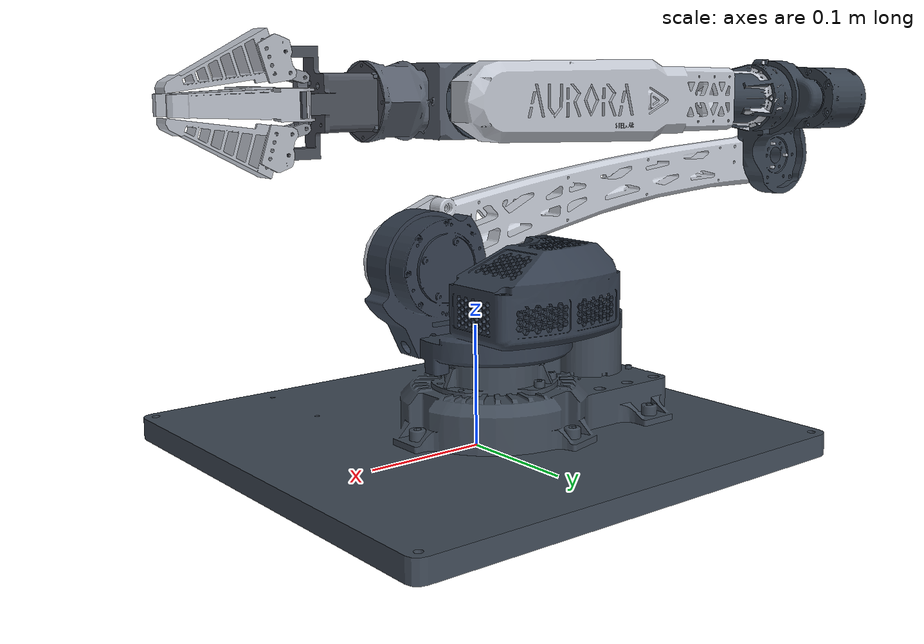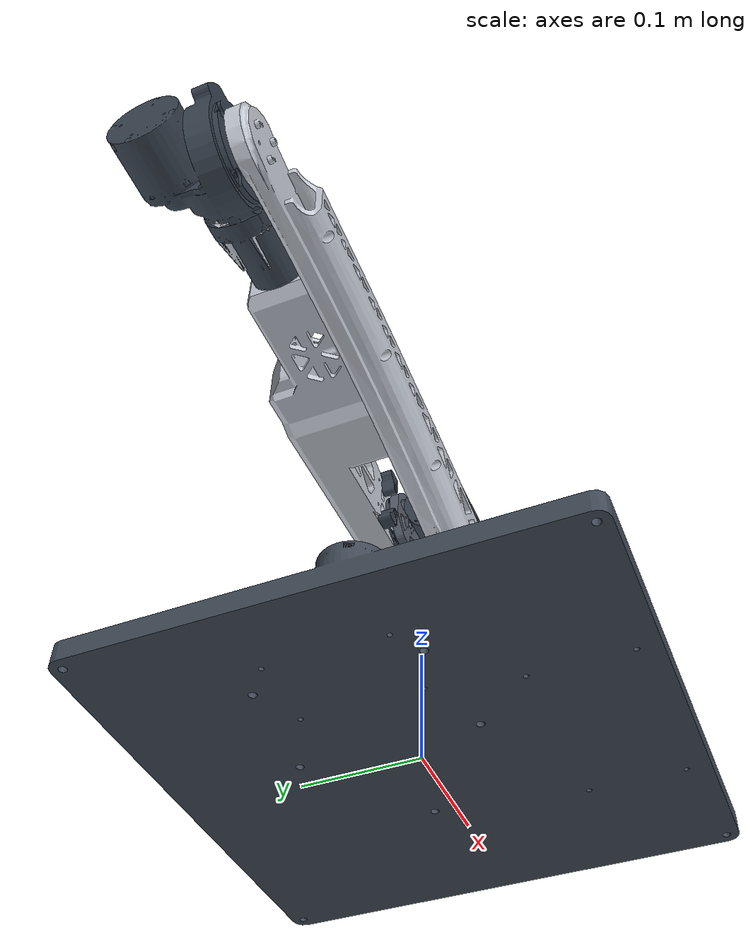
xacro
<?xml version="1.0"?>
<robot xmlns:xacro="http://www.ros.org/wiki/xacro" name="fruit_picking_arm">

  <xacro:arg name="initial_positions_file"
             default="$(find fruit_arm_moveit_config)/config/initial_positions.yaml"/>
  <xacro:arg name="hardware_plugin" default="mock_components/GenericSystem"/>
  <xacro:arg name="use_gazebo" default="false"/>
  <xacro:arg name="base_xyz" default="0 0 0"/>
  <xacro:arg name="base_rpy" default="0 0 0"/>
  <!-- Nominal frames exported from the mechanical "初始位置" assembly. -->
  <xacro:arg name="joint_1_rpy" default="0 0 1.5707963267949"/>
  <xacro:arg name="joint_2_rpy" default="0 0 0"/>
  <xacro:arg name="joint_3_xyz" default="-0.435124907351151 0 0.0653170345518886"/>
  <xacro:arg name="joint_3_rpy" default="0 0 0"/>
  <xacro:arg name="joint_4_rpy" default="0 0 0"/>
  <xacro:arg name="joint_5_xyz" default="0.35399 0.0195 0.0030892"/>
  <xacro:arg name="joint_5_rpy" default="0 0 0"/>
  <xacro:arg name="joint_6_rpy" default="0 0 0"/>
  <!-- Mechanical GRIPPER_MOUNT -> TCP measurement (metres). -->
  <xacro:arg name="tcp_xyz" default="0 0 0.124"/>
  <xacro:arg name="tcp_rpy" default="0 0 0"/>

  <link name="world"/>
  <link name="base_link"/>
  <joint name="world_to_base" type="fixed">
    <parent link="world"/>
    <child link="base_link"/>
    <origin xyz="$(arg base_xyz)" rpy="$(arg base_rpy)"/>
  </joint>

  <!-- Xacro imports -->
  <xacro:include filename="fruit_arm_macro.xacro" />
  <xacro:include filename="gripper.xacro" />
  <xacro:include filename="camera_mount.xacro" />

  <!-- CAD arm mounted under the public ROS base frame. -->
  <xacro:fruit_arm
      parent="base_link"
      hardware_plugin="$(arg hardware_plugin)"
      initial_positions_file="$(arg initial_positions_file)"
      joint_1_rpy="$(arg joint_1_rpy)"
      joint_2_rpy="$(arg joint_2_rpy)"
      joint_3_xyz="$(arg joint_3_xyz)"
      joint_3_rpy="$(arg joint_3_rpy)"
      joint_4_rpy="$(arg joint_4_rpy)"
      joint_5_xyz="$(arg joint_5_xyz)"
      joint_5_rpy="$(arg joint_5_rpy)"
      joint_6_rpy="$(arg joint_6_rpy)" />

  <!-- Gripper attached to the arm's tool flange -->
  <xacro:four_finger_cross_gripper
      parent="tool_flange"
      tcp_xyz="$(arg tcp_xyz)"
      tcp_rpy="$(arg tcp_rpy)" />

  <!-- Gazebo ros2_control plugin — bridges Gazebo physics to controller_manager -->
  <!-- CRITICAL: without this plugin, Gazebo loads the robot as a passive rigid body
       (no actuation, falls under gravity). Only active when use_gazebo:=true. -->
  <xacro:if value="$(arg use_gazebo)">
    <gazebo>
      <plugin filename="libgazebo_ros2_control.so" name="gazebo_ros2_control">
        <robot_param>robot_description</robot_param>
        <robot_param_node>robot_state_publisher</robot_param_node>
        <hold_joints>true</hold_joints>
        <parameters>$(find fruit_arm_moveit_config)/config/ros2_controllers.yaml</parameters>
      </plugin>
    </gazebo>
    <gazebo>
      <plugin filename="libfruit_grasp_attach_plugin.so"
              name="fruit_grasp_attach_plugin">
        <ros>
          <namespace>/simulation/fruit_gripper</namespace>
        </ros>
        <!-- Gazebo collapses the fixed gripper_base joint into arm_link_6. -->
        <parent_link>arm_link_6</parent_link>
        <child_link>apple_link</child_link>
        <model_prefix>fruit_</model_prefix>
        <!-- Mechanical TCP is 124mm beyond GRIPPER_MOUNT. -->
        <max_distance>0.20</max_distance>
      </plugin>
    </gazebo>
    <gazebo reference="gripper_finger_pos_x">
      <mu1>1.2</mu1>
      <mu2>1.2</mu2>
      <kp>100000</kp>
      <kd>10</kd>
      <maxVel>0.05</maxVel>
      <minDepth>0.001</minDepth>
    </gazebo>
    <gazebo reference="gripper_finger_neg_x">
      <mu1>1.2</mu1>
      <mu2>1.2</mu2>
      <kp>100000</kp>
      <kd>10</kd>
      <maxVel>0.05</maxVel>
      <minDepth>0.001</minDepth>
    </gazebo>
  </xacro:if>

</robot>

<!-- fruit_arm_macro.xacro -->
<robot xmlns:xacro="http://www.ros.org/wiki/xacro">

  <xacro:macro name="fruit_arm" params="parent hardware_plugin initial_positions_file joint_1_rpy joint_2_rpy joint_3_xyz joint_3_rpy joint_4_rpy joint_5_xyz joint_5_rpy joint_6_rpy">
    <xacro:include filename="$(find fruit_arm_moveit_config)/config/fruit_arm.ros2_control.xacro" />
    <xacro:fruit_arm_ros2_control
        hardware_plugin="${hardware_plugin}"
        initial_positions_file="${initial_positions_file}"/>

    <xacro:macro name="cad_link" params="name mesh scale mass com inertia color:='0.70 0.72 0.76 1'">
      <link name="${name}">
        <inertial>
          <origin xyz="${com}" rpy="0 0 0"/>
          <mass value="${mass}"/>
          <inertia ixx="${inertia[0]}" ixy="${inertia[1]}" ixz="${inertia[2]}"
                   iyy="${inertia[3]}" iyz="${inertia[4]}" izz="${inertia[5]}"/>
        </inertial>
        <visual>
          <geometry>
            <mesh filename="package://fruit_arm_description/meshes/production_current/${mesh}.STL"
                  scale="${scale}"/>
          </geometry>
          <material name="${name}_production_material">
            <color rgba="${color}"/>
          </material>
        </visual>
        <!-- Full meshes are conservative current-production collision geometry.
             Replace with validated convex collision meshes when supplied. -->
        <collision>
          <geometry>
            <mesh filename="package://fruit_arm_description/meshes/production_current/${mesh}.STL"
                  scale="${scale}"/>
          </geometry>
        </collision>
      </link>
    </xacro:macro>

    <joint name="base_link_to_cad_base" type="fixed">
      <parent link="${parent}"/>
      <child link="cad_base_link"/>
      <origin
          xyz="0.269625725668887 0.0397188996984261 0.190511595840763"
          rpy="0 0 -1.5707963267949"/>
    </joint>

    <xacro:cad_link
        name="cad_base_link" mesh="base_link" scale="1 1 1"
        mass="24.2659133982417"
        com="0.0384822075790388 -0.272372379413935 -0.179024085507165"
        inertia="${[0.305184643401351, -9.31500936258116e-05, -6.77013469591954e-06, 0.303126187305783, -0.00018143511621579, 0.606773363636727]}"
        color="0.25 0.29 0.34 1"/>

    <xacro:cad_link
        name="arm_link_1" mesh="Link1" scale="1 1 1"
        mass="1.11233174705515"
        com="0.0188232824362856 -0.00426763813566422 0.0379319225373873"
        inertia="${[0.00100486453170238, -1.35783567545323e-05, -1.99520612950888e-05, 0.00141206660345013, -4.37890428412638e-06, 0.00160148170849359]}"
        color="0.20 0.24 0.30 1"/>
    <joint name="joint_1" type="revolute">
      <origin xyz="0.0227188996984261 -0.274625725668887 -0.108511595840763"
              rpy="${joint_1_rpy}"/>
      <parent link="cad_base_link"/>
      <child link="arm_link_1"/>
      <!-- Preserve the latest SolidWorks export convention. Positive J1 is
           clockwise when viewed from above the robot. -->
      <axis xyz="0 0 -1"/>
      <limit lower="-2.094395102" upper="2.094395102" effort="250" velocity="1.5"/>
    </joint>

    <xacro:cad_link
        name="arm_link_2" mesh="Link2" scale="1 1 1"
        mass="1.05153555374069"
        com="-0.199941082615719 -0.00943473031517968 0.036815301769582"
        inertia="${[0.000741930484709509, -1.03577892904557e-05, 0.00308887843885743, 0.0224710800600427, 2.22684812672567e-06, 0.0217722306188578]}"
        color="0.78 0.80 0.84 1"/>
    <joint name="joint_2" type="revolute">
      <origin xyz="0.048101 -0.0485 0.071" rpy="${joint_2_rpy}"/>
      <parent link="arm_link_1"/>
      <child link="arm_link_2"/>
      <axis xyz="0 1 0"/>
      <limit lower="0" upper="2.530727415" effort="250" velocity="1.5"/>
    </joint>

    <xacro:cad_link
        name="arm_link_3" mesh="Link3" scale="1 1 1"
        mass="0.798320693966865"
        com="0.0355285294761924 0.0345459055901028 0.0356130946352143"
        inertia="${[0.00063464223517863, -6.45714396578008e-05, -0.000123735267342144, 0.00068434781582379, -9.32854813947486e-05, 0.000495943689170812]}"
        color="0.22 0.26 0.31 1"/>
    <joint name="joint_3" type="revolute">
      <origin xyz="${joint_3_xyz}" rpy="${joint_3_rpy}"/>
      <parent link="arm_link_2"/>
      <child link="arm_link_3"/>
      <axis xyz="0 1 0"/>
      <limit lower="-3.141592654" upper="0" effort="180" velocity="1.5"/>
    </joint>

    <xacro:cad_link
        name="arm_link_4" mesh="Link4" scale="1 1 1"
        mass="1.18645815966956"
        com="0.175300709130546 0.0127677440511237 0.00148733620523427"
        inertia="${[0.000799828510029574, -0.000607037051717173, -4.91351857788434e-05, 0.00646905990215288, -5.52861490570126e-06, 0.00634723364974535]}"
        color="0.76 0.78 0.82 1"/>
    <joint name="joint_4" type="revolute">
      <origin xyz="0.058892 0.04055 0.058516"
              rpy="${joint_4_rpy}"/>
      <parent link="arm_link_3"/>
      <child link="arm_link_4"/>
      <!-- Exported reference axis; the 0.5 degree tilt awaits design confirmation. -->
      <axis xyz="0.99996 0 0.0087265"/>
      <limit lower="-2.879793266" upper="2.879793266" effort="120" velocity="1.8"/>
    </joint>

    <xacro:cad_link
        name="arm_link_5" mesh="Link5" scale="1 1 1"
        mass="0.939555686321257"
        com="-0.137633470297979 -0.0033165299663884 -0.00118393595772584"
        inertia="${[0.000700070707095453, -0.000607034526226786, -4.93580599913154e-05, 0.00637021057444943, -5.54102033809076e-06, 0.00624694966292589]}"
        color="0.22 0.26 0.31 1"/>
    <joint name="joint_5" type="revolute">
      <origin xyz="${joint_5_xyz}" rpy="${joint_5_rpy}"/>
      <parent link="arm_link_4"/>
      <child link="arm_link_5"/>
      <axis xyz="0 1 0"/>
      <limit lower="-1.570796327" upper="1.570796327" effort="100" velocity="1.8"/>
    </joint>

    <xacro:cad_link
        name="arm_link_6" mesh="Link6" scale="1 1 1"
        mass="0.376859019821165"
        com="0.0595086197168401 5.06596178217328e-06 -2.56142515052404e-06"
        inertia="${[0.000137352516885323, -1.71974792019067e-08, 8.92638331012635e-09, 0.000112121471002784, -1.80666426609714e-08, 0.000111815117817263]}"
        color="0.35 0.38 0.43 1"/>
    <joint name="joint_6" type="revolute">
      <origin xyz="0.0285 -0.04 0" rpy="${joint_6_rpy}"/>
      <parent link="arm_link_5"/>
      <child link="arm_link_6"/>
      <axis xyz="1 0 0"/>
      <limit lower="-3.141592654" upper="3.141592654" effort="80" velocity="2.0"/>
    </joint>

    <link name="tool_flange"/>
    <joint name="tool_flange_joint" type="fixed">
      <origin xyz="0.0422 0 0" rpy="0 1.5707963267949 0"/>
      <parent link="arm_link_6"/>
      <child link="tool_flange"/>
    </joint>
  </xacro:macro>
</robot>

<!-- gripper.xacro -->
<robot xmlns:xacro="http://www.ros.org/wiki/xacro">

  <xacro:macro name="gripper_mesh_link" params="name mesh mass:='0.05' color:='0.58 0.60 0.64 1'">
    <link name="${name}">
      <!-- Placeholder dynamics only; MoveIt geometry does not depend on it. -->
      <inertial>
        <origin xyz="0 0 0" rpy="0 0 0"/>
        <mass value="${mass}"/>
        <inertia ixx="0.00005" ixy="0" ixz="0"
                 iyy="0.00005" iyz="0" izz="0.00005"/>
      </inertial>
      <visual>
        <geometry>
          <mesh filename="package://fruit_arm_description/meshes/gripper_current/${mesh}.STL"
                scale="1 1 1"/>
        </geometry>
        <material name="${name}_material"><color rgba="${color}"/></material>
      </visual>
      <collision>
        <geometry>
          <mesh filename="package://fruit_arm_description/meshes/gripper_current/${mesh}.STL"
                scale="1 1 1"/>
        </geometry>
      </collision>
    </link>
  </xacro:macro>

  <xacro:macro name="gripper_moving_link"
               params="name mesh joint_type origin axis travel multiplier mass:='0.05' color:='0.58 0.60 0.64 1'">
    <xacro:gripper_mesh_link name="${name}" mesh="${mesh}" mass="${mass}" color="${color}"/>
    <joint name="${name}_joint" type="${joint_type}">
      <origin xyz="${origin}" rpy="0 0 0"/>
      <parent link="gripper_base"/>
      <child link="${name}"/>
      <axis xyz="${axis}"/>
      <limit lower="0" upper="${travel}" effort="50" velocity="1.0"/>
      <mimic joint="left_finger_joint" multiplier="${multiplier}" offset="0"/>
    </joint>
  </xacro:macro>

  <xacro:macro name="four_finger_cross_gripper" params="parent tcp_xyz tcp_rpy">

    <!-- The supplied gripper STEP coordinate system is GRIPPER_MOUNT. -->
    <xacro:gripper_mesh_link
        name="gripper_base" mesh="gripper_base" mass="0.50"
        color="0.30 0.32 0.36 1"/>
    <joint name="gripper_base_joint" type="fixed">
      <origin xyz="0 0 0" rpy="0 0 0"/>
      <parent link="${parent}"/>
      <child link="gripper_base"/>
    </joint>

    <link name="left_finger"/>
    <joint name="left_finger_joint" type="prismatic">
      <origin xyz="0 0 0" rpy="0 0 0"/>
      <parent link="gripper_base"/>
      <child link="left_finger"/>
      <axis xyz="1 0 0"/>
      <limit lower="0" upper="0.056" effort="50" velocity="0.2"/>
    </joint>
    <link name="right_finger"/>
    <joint name="right_finger_joint" type="prismatic">
      <origin xyz="0 0 0" rpy="0 0 0"/>
      <parent link="gripper_base"/>
      <child link="right_finger"/>
      <axis xyz="1 0 0"/>
      <limit lower="-0.056" upper="0" effort="50" velocity="0.2"/>
    </joint>

    <!-- 13.129847 mm centre-slider travel, closed -> open. -->
    <xacro:gripper_moving_link
        name="gripper_center_slider" mesh="center_slider"
        joint_type="prismatic" origin="0 0 0" axis="0 0 1"
        travel="0.0131298473636645" multiplier="0.234461560065438"
        mass="0.08" color="0.40 0.42 0.46 1"/>

    <!-- Four short drive links: 11.0416 degrees closed -> open. -->
    <xacro:gripper_moving_link
        name="gripper_drive_neg_x" mesh="drive_neg_x"
        joint_type="revolute" origin="-0.085920686 0 0.0621350763" axis="0 -1 0"
        travel="0.192712824843834" multiplier="3.44130044363989"/>
    <xacro:gripper_moving_link
        name="gripper_drive_neg_y" mesh="drive_neg_y"
        joint_type="revolute" origin="0 -0.085920686 0.0621350763" axis="1 0 0"
        travel="0.192712824843834" multiplier="3.44130044363989"/>
    <xacro:gripper_moving_link
        name="gripper_drive_pos_x" mesh="drive_pos_x"
        joint_type="revolute" origin="0.085920686 0 0.0621350763" axis="0 1 0"
        travel="0.192712824843834" multiplier="3.44130044363989"/>
    <xacro:gripper_moving_link
        name="gripper_drive_pos_y" mesh="drive_pos_y"
        joint_type="revolute" origin="0 0.085920686 0.0621350763" axis="-1 0 0"
        travel="0.192712824843834" multiplier="3.44130044363989"/>

    <!-- Four two-piece fingers: 49.2166 degrees closed -> open. -->
    <xacro:gripper_moving_link
        name="gripper_finger_neg_x" mesh="finger_neg_x"
        joint_type="revolute" origin="-0.036 0 0.0725" axis="0 -1 0"
        travel="0.858991045324658" multiplier="15.3391258093689"
        mass="0.10" color="0.72 0.74 0.78 1"/>
    <xacro:gripper_moving_link
        name="gripper_finger_neg_y" mesh="finger_neg_y"
        joint_type="revolute" origin="0 -0.036 0.0725" axis="1 0 0"
        travel="0.858991045324658" multiplier="15.3391258093689"
        mass="0.10" color="0.72 0.74 0.78 1"/>
    <xacro:gripper_moving_link
        name="gripper_finger_pos_x" mesh="finger_pos_x"
        joint_type="revolute" origin="0.036 0 0.0725" axis="0 1 0"
        travel="0.858991045324658" multiplier="15.3391258093689"
        mass="0.10" color="0.72 0.74 0.78 1"/>
    <xacro:gripper_moving_link
        name="gripper_finger_pos_y" mesh="finger_pos_y"
        joint_type="revolute" origin="0 0.036 0.0725" axis="-1 0 0"
        travel="0.858991045324658" multiplier="15.3391258093689"
        mass="0.10" color="0.72 0.74 0.78 1"/>

    <!-- Mechanical GRIPPER_MOUNT -> TCP measurement: +124 mm on mount Z. -->
    <link name="gripper_tcp"/>
    <joint name="gripper_tcp_joint" type="fixed">
      <origin xyz="${tcp_xyz}" rpy="${tcp_rpy}"/>
      <parent link="gripper_base"/>
      <child link="gripper_tcp"/>
    </joint>

  </xacro:macro>
</robot>
